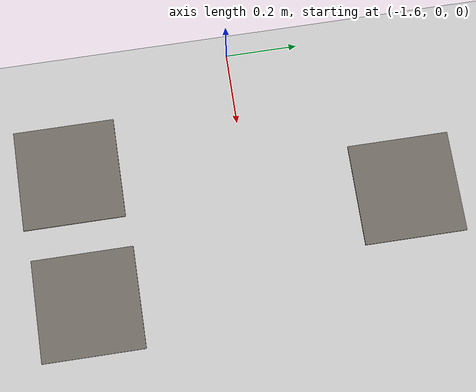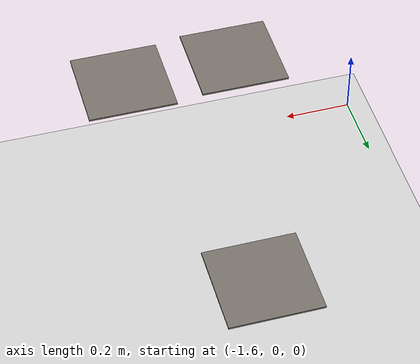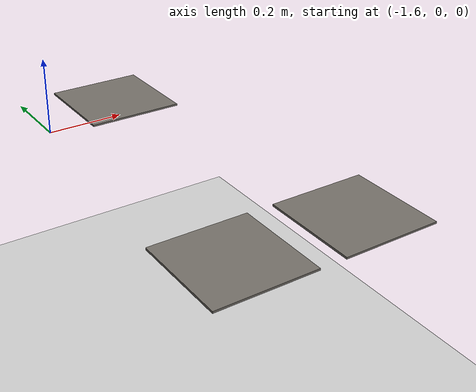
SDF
<?xml version="1.0" ?>
<sdf version="1.9">
  <world name="welding_cell">
    <!-- Physics -->
    <physics name="default_physics" type="ode">
      <max_step_size>0.0025</max_step_size>
      <real_time_factor>1.0</real_time_factor>
    </physics>

    <plugin filename="gz-sim-physics-system" name="gz::sim::systems::Physics">
      <engine><filename>gz-physics-dartsim-plugin</filename></engine>
    </plugin>
    <plugin filename="gz-sim-user-commands-system" name="gz::sim::systems::UserCommands"/>
    <plugin filename="gz-sim-scene-broadcaster-system" name="gz::sim::systems::SceneBroadcaster"/>
    <plugin filename="gz-sim-contact-system" name="gz::sim::systems::Contact"/>
    <plugin filename="gz-sim-sensors-system" name="gz::sim::systems::Sensors">
      <render_engine>ogre2</render_engine>
    </plugin>

    <!-- Lighting -->
    <light type="directional" name="sun">
      <cast_shadows>true</cast_shadows>
      <pose>0 0 10 0 0 0</pose>
      <diffuse>0.8 0.8 0.8 1</diffuse>
      <specular>0.2 0.2 0.2 1</specular>
      <direction>-0.5 0.1 -0.9</direction>
    </light>

    <!-- Ground plane -->
    <model name="ground_plane">
      <static>true</static>
      <pose>0 0 -1.0 0 0 0</pose>
      <link name="link">
        <collision name="collision">
          <geometry>
            <plane>
              <normal>0 0 1</normal>
              <size>100 100</size>
            </plane>
          </geometry>
        </collision>
        <visual name="visual">
          <geometry>
            <plane>
              <normal>0 0 1</normal>
              <size>100 100</size>
            </plane>
          </geometry>
          <material>
            <ambient>0.8 0.8 0.8 1</ambient>
            <diffuse>0.8 0.8 0.8 1</diffuse>
          </material>
        </visual>
      </link>
    </model>

    <!-- ── Welding plates (300×300×6 mm steel) ─────────────────────── -->
    <!-- Positions from plates.json calibration data (base_link frame)  -->

    <!-- plate_03 / plate_01 position (front table area) -->
    <model name="weld_plate_front">
      <static>true</static>
      <pose>-1.3751 -0.5063 -0.1877 0 0 0</pose>
      <link name="plate_link">
        <collision name="col">
          <geometry><box><size>0.3 0.3 0.006</size></box></geometry>
        </collision>
        <visual name="vis">
          <geometry><box><size>0.3 0.3 0.006</size></box></geometry>
          <material>
            <ambient>0.30 0.28 0.25 1</ambient>
            <diffuse>0.45 0.43 0.40 1</diffuse>
            <specular>0.25 0.25 0.25 1</specular>
          </material>
        </visual>
      </link>
    </model>

    <!-- plate_04 / plate_02 position (rear table area) -->
    <model name="weld_plate_rear">
      <static>true</static>
      <pose>-0.9852 -0.4962 -0.1958 0 0 0</pose>
      <link name="plate_link">
        <collision name="col">
          <geometry><box><size>0.3 0.3 0.006</size></box></geometry>
        </collision>
        <visual name="vis">
          <geometry><box><size>0.3 0.3 0.006</size></box></geometry>
          <material>
            <ambient>0.30 0.28 0.25 1</ambient>
            <diffuse>0.45 0.43 0.40 1</diffuse>
            <specular>0.25 0.25 0.25 1</specular>
          </material>
        </visual>
      </link>
    </model>

    <!-- test_plate_01 position (opposite side of table, yaw 180°) -->
    <model name="weld_plate_test">
      <static>true</static>
      <pose>-1.1831 0.4714 -0.1772 0 0 3.14159</pose>
      <link name="plate_link">
        <collision name="col">
          <geometry><box><size>0.3 0.3 0.006</size></box></geometry>
        </collision>
        <visual name="vis">
          <geometry><box><size>0.3 0.3 0.006</size></box></geometry>
          <material>
            <ambient>0.30 0.28 0.25 1</ambient>
            <diffuse>0.45 0.43 0.40 1</diffuse>
            <specular>0.25 0.25 0.25 1</specular>
          </material>
        </visual>
      </link>
    </model>

  </world>
</sdf>
